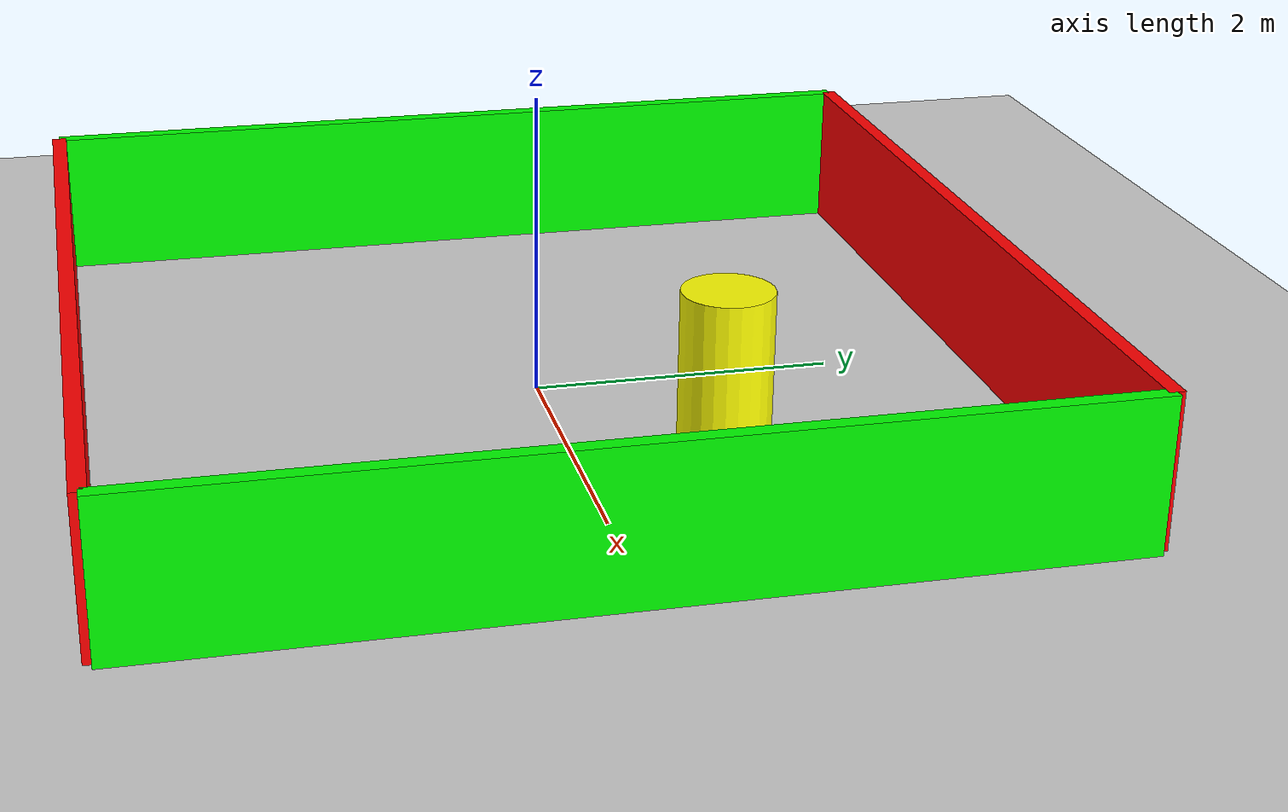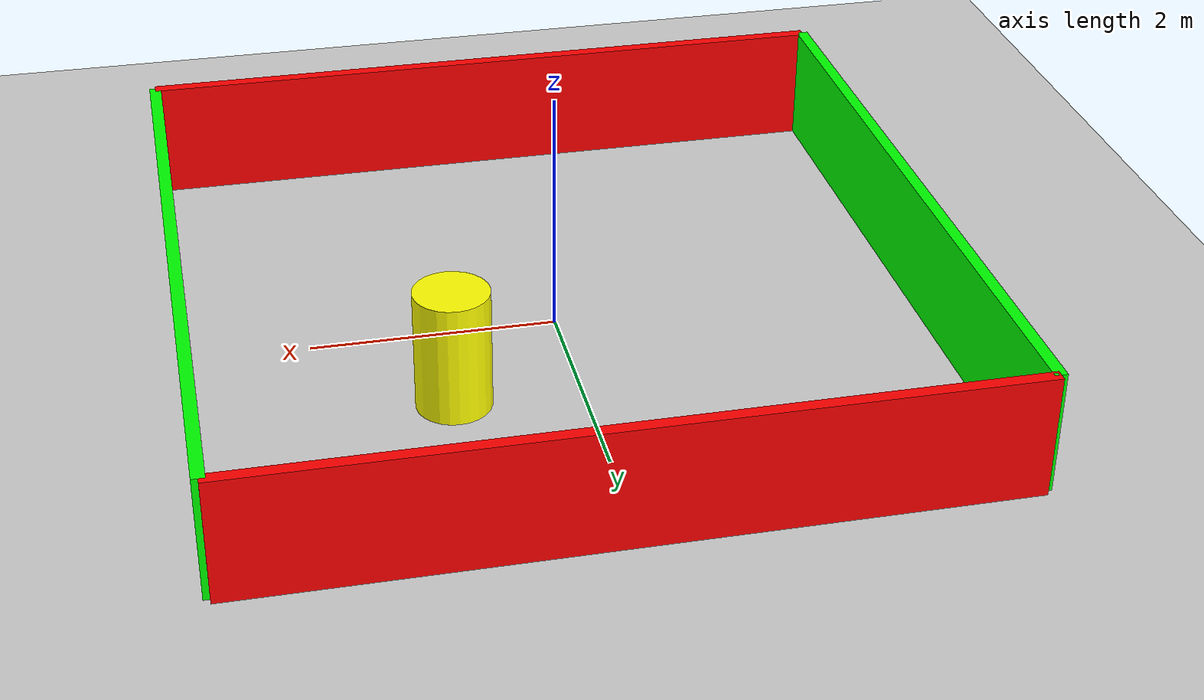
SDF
<?xml version="1.0" ?>
<sdf version="1.9">
<world name="simple_obstacles">

  <!-- Global light -->
  <include>
    <uri>model://sun</uri>
  </include>

  <!-- Ground plane -->
  <model name="ground_plane">
    <static>true</static>
    <link name="link">
      <collision name="collision">
        <geometry>
          <plane>
            <normal>0 0 1</normal>
            <size>20 20</size>
          </plane>
        </geometry>
        <surface>
          <friction>
            <ode>
              <mu>100</mu>
              <mu2>50</mu2>
            </ode>
          </friction>
        </surface>
      </collision>
      <visual name="visual">
        <geometry>
          <plane>
            <normal>0 0 1</normal>
            <size>20 20</size>
          </plane>
        </geometry>
        <material>
          <script>
            <uri>file://media/materials/scripts/gazebo.material</uri>
            <name>Gazebo/Grey</name>
          </script>
        </material>
      </visual>
    </link>
  </model>

  <!-- Simple walls -->
  <model name="wall1">
    <pose>0 3 0.5 0 0 0</pose>
    <static>true</static>
    <link name="link">
      <collision name="collision">
        <geometry>
          <box>
            <size>6 0.1 1</size>
          </box>
        </geometry>
      </collision>
      <visual name="visual">
        <geometry>
          <box>
            <size>6 0.1 1</size>
          </box>
        </geometry>
        <material>
          <ambient>1 0 0 1</ambient>
        </material>
      </visual>
    </link>
  </model>

  <model name="wall2">
    <pose>0 -3 0.5 0 0 0</pose>
    <static>true</static>
    <link name="link">
      <collision name="collision">
        <geometry>
          <box>
            <size>6 0.1 1</size>
          </box>
        </geometry>
      </collision>
      <visual name="visual">
        <geometry>
          <box>
            <size>6 0.1 1</size>
          </box>
        </geometry>
        <material>
          <ambient>1 0 0 1</ambient>
        </material>
      </visual>
    </link>
  </model>

  <model name="wall3">
    <pose>3 0 0.5 0 0 0</pose>
    <static>true</static>
    <link name="link">
      <collision name="collision">
        <geometry>
          <box>
            <size>0.1 6 1</size>
          </box>
        </geometry>
      </collision>
      <visual name="visual">
        <geometry>
          <box>
            <size>0.1 6 1</size>
          </box>
        </geometry>
        <material>
          <ambient>0 1 0 1</ambient>
        </material>
      </visual>
    </link>
  </model>

  <model name="wall4">
    <pose>-3 0 0.5 0 0 0</pose>
    <static>true</static>
    <link name="link">
      <collision name="collision">
        <geometry>
          <box>
            <size>0.1 6 1</size>
          </box>
        </geometry>
      </collision>
      <visual name="visual">
        <geometry>
          <box>
            <size>0.1 6 1</size>
          </box>
        </geometry>
        <material>
          <ambient>0 1 0 1</ambient>
        </material>
      </visual>
    </link>
  </model>

  <!-- Simple obstacle -->
  <model name="obstacle">
    <pose>1 1 0.5 0 0 0</pose>
    <static>true</static>
    <link name="link">
      <collision name="collision">
        <geometry>
          <cylinder>
            <radius>0.3</radius>
            <length>1</length>
          </cylinder>
        </geometry>
      </collision>
      <visual name="visual">
        <geometry>
          <cylinder>
            <radius>0.3</radius>
            <length>1</length>
          </cylinder>
        </geometry>
        <material>
          <ambient>1 1 0 1</ambient>
        </material>
      </visual>
    </link>
  </model>

</world>
</sdf>
